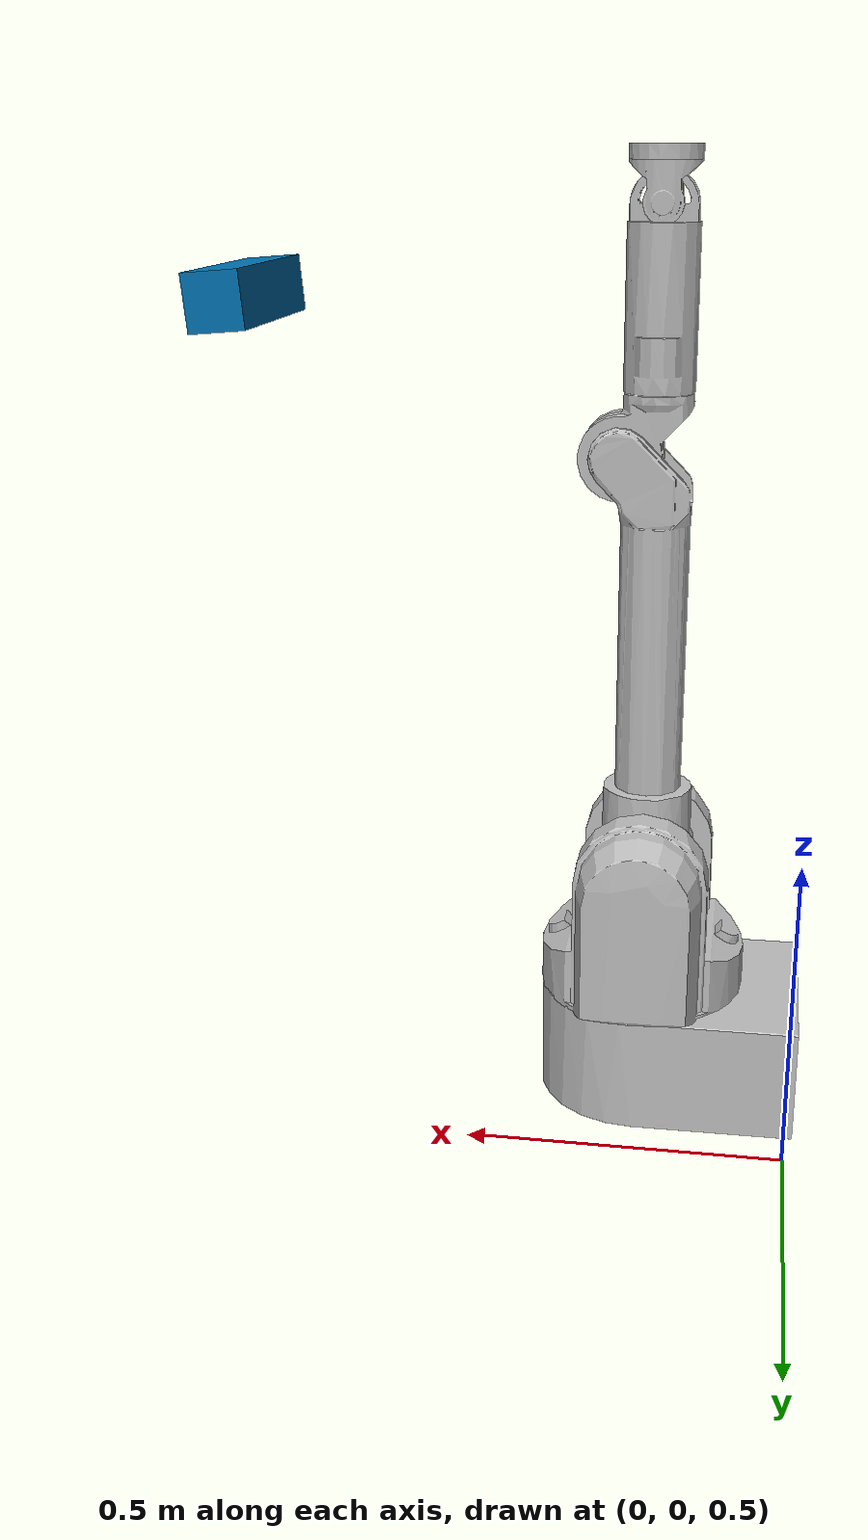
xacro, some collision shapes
<?xml version="1.0"?>
<robot name="iri_wam" xmlns:xacro="http://www.ros.org/wiki/xacro" >

  <!-- Set up definitions of parts of the robot body -->
  <xacro:include filename="$(find iri_wam_description)/xacro/iri_wam_base.urdf.xacro" />
  <xacro:include filename="$(find iri_wam_description)/xacro/iri_wam_1.urdf.xacro" />
  <xacro:include filename="$(find iri_wam_description)/xacro/iri_wam_2.urdf.xacro" />
  <xacro:include filename="$(find iri_wam_description)/xacro/iri_wam_3.urdf.xacro" />
  <xacro:include filename="$(find iri_wam_description)/xacro/iri_wam_4.urdf.xacro" />
  <xacro:include filename="$(find iri_wam_description)/xacro/iri_wam_5.urdf.xacro" />
  <xacro:include filename="$(find iri_wam_description)/xacro/iri_wam_6.urdf.xacro" />
  <xacro:include filename="$(find iri_wam_description)/xacro/iri_wam_7.urdf.xacro" />
  <xacro:include filename="$(find iri_wam_description)/xacro/iri_wam_tcp.urdf.xacro" />
  <xacro:include filename="$(find cirp_wam_description)/xacro/kinect.urdf.xacro" />
  <xacro:include filename="$(find cirp_wam_description)/xacro/gripper.urdf.xacro" />

  <xacro:property name="robot_name" value="iri_wam"/>
  <xacro:property name="JointInterface" value="hardware_interface/EffortJointInterface"/>

  <!-- This will attach the robot to the world link -->
  <link name="world"/>
  <joint name="fixed" type="fixed">
    <parent link="world"/>
    <child  link="${robot_name}_link_footprint"/>
    <origin xyz="0 0 0.72" rpy="0 0 0" />
  </joint>

  <xacro:wambase prefix="${robot_name}"/>
  <xacro:wam1    prefix="${robot_name}" parent="${robot_name}_link_base" controller="${JointInterface}"/>
  <xacro:wam2    prefix="${robot_name}" parent="${robot_name}_link_1" controller="${JointInterface}"/>
  <xacro:wam3    prefix="${robot_name}" parent="${robot_name}_link_2" controller="${JointInterface}"/>
  <xacro:wam4    prefix="${robot_name}" parent="${robot_name}_link_3" controller="${JointInterface}"/>
  <xacro:wam5    prefix="${robot_name}" parent="${robot_name}_link_4" controller="${JointInterface}"/>
  <xacro:wam6    prefix="${robot_name}" parent="${robot_name}_link_5" controller="${JointInterface}"/>
  <xacro:wam7    prefix="${robot_name}" parent="${robot_name}_link_6" controller="${JointInterface}"/>
  <xacro:wamtcp  prefix="${robot_name}" parent="${robot_name}_link_7"/>
  <xacro:gripper prefix="${robot_name}" parent="${robot_name}_link_tcp"/>
  <xacro:kinect                         parent="${robot_name}_link_base" />

  <!-- Not used but exposed here for educational purposes -->

  <!-- ros_control plugin -->
  <gazebo>
    <plugin name="gazebo_ros_control" filename="libgazebo_ros_control.so">
      <robotNamespace>/${robot_name}</robotNamespace>
      <eStopTopic>e_stop</eStopTopic>
    </plugin>
  </gazebo>

</robot>

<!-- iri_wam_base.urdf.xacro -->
<robot xmlns:xacro="http://www.ros.org/wiki/xacro">

  <xacro:property name="M_PI" value="3.1415926535897931" />

  <xacro:property name="base_mass" value="20"/>
  <xacro:property name="base_cg_x" value="0.0"/>
  <xacro:property name="base_cg_y" value="0.0"/>
  <xacro:property name="base_cg_z" value="0.0"/>

  <xacro:macro name="wambase" params="prefix">
    <link name="${prefix}_link_base">
        <inertial>
            <mass value="${base_mass}" />
            <origin xyz="${base_cg_x} ${base_cg_y} ${base_cg_z}" />
            <inertia ixx="0.5" ixy="0.0" ixz="0.0"
                     iyy="0.5" iyz="0.0"
                     izz="0.5" />
        </inertial>

        <visual>
            <origin xyz="0 0 0" rpy="0 0 0" />
            <geometry>
                <mesh filename="package://iri_wam_description/mesh/wambase.stl" scale="1.0 1.0 1.0" />
            </geometry>
            <material name="Grey" >
                <color rgba="0.75 0.75 0.75 1.0"/>
            </material>
        </visual>

        <collision>
            <origin xyz="0.0 0.0 0.0" rpy="0 0 0"/>
            <geometry>
                <mesh filename="package://iri_wam_description/mesh/wambase_collision.stl" scale="1.0 1.0 1.0" />
            </geometry>
            <contact_coefficients kd="1.0" kp="1000.0" mu="0"/>
        </collision>
    </link>

    <link name="${prefix}_link_footprint"/>

    <joint name="${prefix}_joint_footprint" type="fixed">
        <origin xyz="0.22 0.14 0.346" rpy="0 0 0" />
        <child link="${prefix}_link_base"/>
        <parent link="${prefix}_link_footprint"/>
    </joint>

    <gazebo reference="${prefix}_link_base">
        <selfCollide>true</selfCollide>
        <material>Gazebo/Grey</material>
    </gazebo>

  </xacro:macro>

</robot>

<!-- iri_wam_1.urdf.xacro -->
<robot xmlns:xacro="http://www.ros.org/wiki/xacro">

  <xacro:property name="M_PI" value="3.1415926535897931" />

  <xacro:macro name="wam1" params="prefix parent">

    <link name="${prefix}_link_1">
        <inertial>
            <mass value="8.3936" />
            <origin xyz="0.0 0.0 0.0" rpy="0 0 0" />
            <inertia ixx="0.5" ixy="0.0" ixz="0.0"
                     iyy="0.5" iyz="0.0"
                     izz="0.5" />
        </inertial>
        <visual>
            <origin xyz="0.0 0.0 0.0" rpy="0 0 0" />
            <geometry name="${prefix}_link_1_visual">
                <mesh filename="package://iri_wam_description/mesh/wam1.stl" scale="1.0 1.0 1.0" />
            </geometry>
            <material name="Grey" >
                <color rgba="0.75 0.75 0.75 1.0"/>
            </material>
        </visual>
        <collision>
            <origin xyz="0.0 0.0 0.0" rpy="0 0 0"/>
            <geometry name="${prefix}_link_1_collision">
                <mesh filename="package://iri_wam_description/mesh/wam1_collision.stl" scale="1.0 1.0 1.0" />
            </geometry>
            <contact_coefficients kd="1.0" kp="1000.0" mu="0"/>
        </collision>
    </link>

    <gazebo reference="${prefix}_link_1">
        <material>Gazebo/Grey</material>
        <selfCollide>true</selfCollide>
    </gazebo>

    <joint name="${prefix}_joint_1" type="revolute">
        <parent link="${parent}"/>
        <child link="${prefix}_link_1"/>
        <origin xyz="0.0 0.0 0.0" rpy="0 0 0" />
        <axis xyz="0 0 1" />
        <limit lower="-2.6" upper="2.6" effort="75" velocity="2.0"/>
        <dynamics damping="100"/>
    </joint>

    <transmission name="tran_1">
      <type>transmission_interface/SimpleTransmission</type>
      <joint name="${prefix}_joint_1">
       <hardwareInterface>EffortJointInterface</hardwareInterface>
      </joint>
      <actuator name="motor_1">
        <hardwareInterface>EffortJointInterface</hardwareInterface>
      	<mechanicalReduction>50</mechanicalReduction>
        <motorTorqueConstant>1</motorTorqueConstant>
      </actuator>
    </transmission>

  </xacro:macro>

</robot>

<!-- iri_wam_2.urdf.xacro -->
<robot xmlns:xacro="http://www.ros.org/wiki/xacro">

  <xacro:property name="M_PI" value="3.1415926535897931" />

  <xacro:macro name="wam2" params="prefix parent">

    <link name="${prefix}_link_2">
        <inertial>
            <mass value="4.8487" />
            <origin xyz="0 0 0" rpy="0 0 0" />
            <inertia ixx="0.1" ixy="0.0" ixz="0.0"
                     iyy="0.1" iyz="0.0"
                     izz="0.1" />
        </inertial>
        <visual>
            <origin xyz="0.0 0.0 0.0" rpy="0 0 0" />
            <geometry name="${prefix}_link_2_visual">
                <mesh filename="package://iri_wam_description/mesh/wam2.stl" scale="1.0 1.0 1.0" />
            </geometry>
            <material name="Grey" >
                <color rgba="0.75 0.75 0.75 1.0"/>
            </material>
        </visual>
        <collision>
            <origin xyz="0.0 0.0 0.0" rpy="0 0 0"/>
            <geometry name="${prefix}_link_2_collision">
                <mesh filename="package://iri_wam_description/mesh/wam2_collision.stl" scale="1.0 1.0 1.0" />
            </geometry>
            <contact_coefficients kd="1.0" kp="1000.0" mu="0"/>
        </collision>
    </link>

    <gazebo reference="${prefix}_link_2">
        <material>Gazebo/Grey</material>
        <selfCollide>true</selfCollide>
    </gazebo>

    <joint name="${prefix}_joint_2" type="revolute">
        <parent link="${parent}"/>
        <child link="${prefix}_link_2"/>
        <origin xyz="0.0 0.0 0.0" rpy="0 0 0" />
        <axis xyz="0 1 0" />
        <limit lower="-2.0" upper="2.0" effort="75" velocity="2.0"/>
        <dynamics damping="100"/>
    </joint>

    <transmission name="tran_2">
      <type>transmission_interface/SimpleTransmission</type>
      <joint name="${prefix}_joint_2">
      <hardwareInterface>EffortJointInterface</hardwareInterface>
      </joint>
      <actuator name="motor_2">
        <hardwareInterface>EffortJointInterface</hardwareInterface>
      	<mechanicalReduction>50</mechanicalReduction>
        <motorTorqueConstant>1</motorTorqueConstant>
      </actuator>
    </transmission>

  </xacro:macro>

</robot>

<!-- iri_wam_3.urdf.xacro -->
<robot xmlns:xacro="http://www.ros.org/wiki/xacro">

  <xacro:property name="M_PI" value="3.1415926535897931" />

  <xacro:macro name="wam3" params="prefix parent">

    <link name="${prefix}_link_3">
        <inertial>
            <mass value="1.7251" />
            <origin xyz="0 0 0.225" rpy="0 0 0" />
            <inertia ixx="0.1" ixy="0.0" ixz="0.0"
                     iyy="0.1" iyz="0.0"
                     izz="0.1" />
        </inertial>
        <visual>
            <origin xyz="0.0 0.0 0.0" rpy="0 0 0" />
            <geometry name="${prefix}_link_3_visual">
                <mesh filename="package://iri_wam_description/mesh/wam3.stl" scale="1.0 1.0 1.0" />
            </geometry>
            <material name="Grey" >
                <color rgba="0.75 0.75 0.75 1.0"/>
            </material>
        </visual>
        <collision>
            <origin xyz="0.0 0.0 0.0" rpy="0 0 0"/>
            <geometry name="${prefix}_link_3_collision">
                <mesh filename="package://iri_wam_description/mesh/wam3_collision.stl" scale="1.0 1.0 1.0" />
            </geometry>
            <contact_coefficients kd="1.0" kp="1000.0" mu="0"/>
        </collision>
    </link>

    <gazebo reference="${prefix}_link_3">
        <material>Gazebo/Grey</material>
        <selfCollide>true</selfCollide>
    </gazebo>

    <joint name="${prefix}_joint_3" type="revolute">
        <parent link="${parent}"/>
        <child link="${prefix}_link_3"/>
        <origin xyz="0.0 0.0 0.0" rpy="0 0 0" />
        <axis xyz="0 0 1" />
        <limit lower="-2.8" upper="2.8" effort="75" velocity="2.0"/>
        <dynamics damping="100"/>
    </joint>

    <transmission name="tran_3">
      <type>transmission_interface/SimpleTransmission</type>
      <joint name="${prefix}_joint_3">
        <hardwareInterface>EffortJointInterface</hardwareInterface>
      </joint>
      <actuator name="motor_3">
        <hardwareInterface>EffortJointInterface</hardwareInterface>
      	<mechanicalReduction>50</mechanicalReduction>
        <motorTorqueConstant>1</motorTorqueConstant>
      </actuator>
    </transmission>

  </xacro:macro>

</robot>

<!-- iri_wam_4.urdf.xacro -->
<robot xmlns:xacro="http://www.ros.org/wiki/xacro">

  <xacro:property name="M_PI" value="3.1415926535897931" />

  <xacro:macro name="wam4" params="prefix parent">

    <link name="${prefix}_link_4">
        <inertial>
            <mass value="2.0824" />
            <origin xyz="-0.045 -0.15 0" rpy="0 0 0" />
            <inertia ixx="0.2" ixy="0.0" ixz="0.0"
                     iyy="0.2" iyz="0.0"
                     izz="0.2" />
        </inertial>
        <visual>
            <origin xyz="0.0 0.0 0.0" rpy="0 0 0" />
            <geometry name="${prefix}_link_4_visual">
                <mesh filename="package://iri_wam_description/mesh/wam4.stl" scale="1.0 1.0 1.0" />
            </geometry>
            <material name="Grey" >
                <color rgba="0.75 0.75 0.75 1.0"/>
            </material>
        </visual>
        <collision>
            <origin xyz="0.0 0.0 0.0" rpy="0 0 0"/>
            <geometry name="${prefix}_link_4_collision">
                <mesh filename="package://iri_wam_description/mesh/wam4_collision.stl" scale="1.0 1.0 1.0" />
            </geometry>
            <contact_coefficients kd="1.0" kp="1000.0" mu="0"/>
        </collision>
    </link>

    <gazebo reference="${prefix}_link_4">
        <material>Gazebo/Grey</material>
        <selfCollide>true</selfCollide>
    </gazebo>

    <joint name="${prefix}_joint_4" type="revolute">
        <parent link="${parent}"/>
        <child link="${prefix}_link_4"/>
        <origin xyz="0.045 0.0 0.55" rpy="-${M_PI/2} 0 0" />
        <axis xyz="0 0 1" />
        <limit lower="-0.9" upper="3.1" effort="75" velocity="2.0"/>
        <dynamics damping="100"/>
    </joint>

    <transmission name="tran_4">
      <type>transmission_interface/SimpleTransmission</type>
      <joint name="${prefix}_joint_4">
        <hardwareInterface>EffortJointInterface</hardwareInterface>

      </joint>
      <actuator name="motor_4">
        <hardwareInterface>EffortJointInterface</hardwareInterface>
      	<mechanicalReduction>50</mechanicalReduction>
        <motorTorqueConstant>1</motorTorqueConstant>
      </actuator>
    </transmission>

  </xacro:macro>

</robot>

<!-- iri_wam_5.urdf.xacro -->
<robot xmlns:xacro="http://www.ros.org/wiki/xacro">

  <xacro:property name="M_PI" value="3.1415926535897931" />

  <xacro:macro name="wam5" params="prefix parent">

    <link name="${prefix}_link_5">
        <inertial>
            <mass value="0.3067" />
            <origin xyz="0 0 0" rpy="0 0 0" />
            <inertia ixx="0.1" ixy="0.0" ixz="0.0"
                     iyy="0.1" iyz="0.0"
                     izz="0.1" />
        </inertial>
        <visual>
            <origin xyz="0.0 0.0 0.0" rpy="0 0 0" />
            <geometry name="${prefix}_link_5_visual">
                <mesh filename="package://iri_wam_description/mesh/wam5.stl" scale="1.0 1.0 1.0" />
            </geometry>
            <material name="Grey" >
                <color rgba="0.75 0.75 0.75 1.0"/>
            </material>
        </visual>
        <collision>
            <origin xyz="0.0 0.0 0.0" rpy="0 0 0"/>
            <geometry name="${prefix}_link_5_collision">
                <mesh filename="package://iri_wam_description/mesh/wam5_collision.stl" scale="1.0 1.0 1.0" />
            </geometry>
            <contact_coefficients kd="1.0" kp="1000.0" mu="0"/>
        </collision>
    </link>

    <gazebo reference="${prefix}_link_5">
        <material>Gazebo/Grey</material>
        <selfCollide>true</selfCollide>
    </gazebo>

    <joint name="${prefix}_joint_5" type="revolute">
        <parent link="${parent}"/>
        <child link="${prefix}_link_5"/>
        <origin xyz="-0.045 -0.3 0.0" rpy="${M_PI/2} 0 0" />
        <axis xyz="0 0 1" />
        <limit lower="-4.76" upper="1.24" effort="75" velocity="2.0"/>
        <dynamics damping="100"/>
    </joint>

    <transmission name="tran_5">
      <type>transmission_interface/SimpleTransmission</type>
      <joint name="${prefix}_joint_5">
        <hardwareInterface>EffortJointInterface</hardwareInterface>
</joint>
      <actuator name="motor_5">
        <hardwareInterface>EffortJointInterface</hardwareInterface>
      	<mechanicalReduction>50</mechanicalReduction>
        <motorTorqueConstant>1</motorTorqueConstant>
      </actuator>
    </transmission>

  </xacro:macro>

</robot>

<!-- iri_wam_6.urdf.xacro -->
<robot xmlns:xacro="http://www.ros.org/wiki/xacro">

  <xacro:property name="M_PI" value="3.1415926535897931" />

  <xacro:macro name="wam6" params="prefix parent">

    <link name="${prefix}_link_6">
        <inertial>
            <mass value="0.4278" />
            <origin xyz="0 0 0" rpy="0 0 0" />
            <inertia ixx="0.1" ixy="0.0" ixz="0.0"
                     iyy="0.1" iyz="0.0"
                     izz="0.1" />
        </inertial>
        <visual>
            <origin xyz="0.0 0.0 0.0" rpy="0 0 0" />
            <geometry name="${prefix}_link_6_visual">
                <mesh filename="package://iri_wam_description/mesh/wam6.stl" scale="1.0 1.0 1.0" />
            </geometry>
            <material name="Grey" >
                <color rgba="0.75 0.75 0.75 1.0"/>
            </material>
        </visual>
        <collision>
            <origin xyz="0.0 0.0 0.0" rpy="0 0 0"/>
            <geometry name="${prefix}_link_6_collision">
                <mesh filename="package://iri_wam_description/mesh/wam6_collision.stl" scale="1.0 1.0 1.0" />
            </geometry>
            <contact_coefficients kd="1.0" kp="1000.0" mu="0"/>
        </collision>
    </link>

    <gazebo reference="${prefix}_link_6">
        <material>Gazebo/Grey</material>
        <selfCollide>true</selfCollide>
    </gazebo>

    <joint name="${prefix}_joint_6" type="revolute">
        <parent link="${parent}"/>
        <child link="${prefix}_link_6"/>
        <origin xyz="0.0 0.0 0.0" rpy="-${M_PI/2} 0 0" />
        <axis xyz="0 0 1" />
        <limit lower="-1.6" upper="1.6" effort="75" velocity="2.0"/>
        <dynamics damping="100"/>
    </joint>

    <transmission name="tran_6">
      <type>transmission_interface/SimpleTransmission</type>
      <joint name="${prefix}_joint_6">
        <hardwareInterface>EffortJointInterface</hardwareInterface>

</joint>
      <actuator name="motor_6">
        <hardwareInterface>EffortJointInterface</hardwareInterface>
      	<mechanicalReduction>50</mechanicalReduction>
        <motorTorqueConstant>1</motorTorqueConstant>
      </actuator>
    </transmission>

  </xacro:macro>

</robot>

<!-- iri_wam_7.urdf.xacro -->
<robot xmlns:xacro="http://www.ros.org/wiki/xacro">

  <xacro:property name="M_PI" value="3.1415926535897931" />

  <xacro:macro name="wam7" params="prefix parent">

    <link name="${prefix}_link_7">
        <inertial>
            <mass value="0.0557" />
            <origin xyz="0 0 0" rpy="0 0 0" />
            <inertia ixx="0.1" ixy="0.0" ixz="0.0"
                     iyy="0.1" iyz="0.0"
                     izz="0.1" />
        </inertial>
        <visual>
            <origin xyz="0.0 0.0 0.0" rpy="0 0 0" />
            <geometry name="${prefix}_link_7_visual">
                <mesh filename="package://iri_wam_description/mesh/wam7.stl" scale="1.0 1.0 1.0" />
            </geometry>
            <material name="Grey" >
                <color rgba="0.75 0.75 0.75 1.0"/>
            </material>
        </visual>
        <collision>
            <origin xyz="0.0 0.0 0.0" rpy="0 0 0"/>
            <geometry name="${prefix}_link_7_collision">
                <mesh filename="package://iri_wam_description/mesh/wam7_collision.stl" scale="1.0 1.0 1.0" />
            </geometry>
            <contact_coefficients kd="1.0" kp="1000.0" mu="0"/>
        </collision>
    </link>

    <gazebo reference="${prefix}_link_7">
        <material>Gazebo/Grey</material>
        <selfCollide>true</selfCollide>
    </gazebo>

    <joint name="${prefix}_joint_7" type="revolute">
        <parent link="${parent}"/>
        <child link="${prefix}_link_7"/>
        <origin xyz="0.0 0.0 0.0" rpy="${M_PI/2} 0 0" />
        <axis xyz="0 0 1" />
        <limit lower="-3.0" upper="3.0" effort="75" velocity="2.0"/>
        <dynamics damping="100"/>
    </joint>

    <transmission name="tran_7">
      <type>transmission_interface/SimpleTransmission</type>
      <joint name="${prefix}_joint_7">
        <hardwareInterface>EffortJointInterface</hardwareInterface>

</joint>
      <actuator name="motor_7">
        <hardwareInterface>EffortJointInterface</hardwareInterface>
      	<mechanicalReduction>50</mechanicalReduction>
        <motorTorqueConstant>1</motorTorqueConstant>
      </actuator>
    </transmission>

  </xacro:macro>

</robot>

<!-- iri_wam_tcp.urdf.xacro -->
<robot xmlns:xacro="http://www.ros.org/wiki/xacro">

  <xacro:property name="M_PI" value="3.1415926535897931" />

  <xacro:macro name="wamtcp" params="prefix parent">

    <link name="${prefix}_link_tcp" />

    <joint name="${prefix}_joint_tcp" type="fixed" >
      <parent link="${parent}" />
      <child link="${prefix}_link_tcp" />
      <origin xyz="0.0 0.0 0.06" rpy="0 0 0" />
    </joint>

  </xacro:macro>

</robot>

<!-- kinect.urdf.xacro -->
<robot xmlns:xacro="http://www.ros.org/wiki/xacro" >

  <xacro:property name="M_PI" value="3.1415926535897931" />
  <xacro:property name="cam_px" value="-0.1" />
  <xacro:property name="cam_py" value="-0.0125" />
  <xacro:property name="cam_pz" value=" 0.08" />
  <xacro:property name="cam_or" value="0" />
  <xacro:property name="cam_op" value="-${M_PI/2}" />
  <xacro:property name="cam_oy" value="0" />

  <xacro:macro name="kinect" params="parent cam_ns:=camera prefix:=camera">

    <!-- In gazebo the camera looks along the X axis!!-->
    <gazebo reference="${prefix}_rgb_frame">
      <sensor name='camera' type='depth'>
        <update_rate>40</update_rate>
        <camera name='__default__'>
          <horizontal_fov>1.0472</horizontal_fov>
          <image>
            <width>640</width>
            <height>480</height>
            <format>R8G8B8</format>
          </image>
          <clip>
            <near>0.05</near>
            <far>3</far>
          </clip>
        </camera>

        <plugin name="kinect_controller" filename="libgazebo_ros_openni_kinect.so">
          <baseline>0.2</baseline>
          <alwaysOn>true</alwaysOn>
          <updateRate>1.0</updateRate>
          <cameraName>kinect_ir</cameraName>
          <imageTopicName>/${cam_ns}/rgb/image_color</imageTopicName>
          <cameraInfoTopicName>/${cam_ns}/rgb/camera_info</cameraInfoTopicName>
          <depthImageTopicName>/${cam_ns}/depth_registered/image_raw</depthImageTopicName>
          <depthImageCameraInfoTopicName>/${cam_ns}/depth/camera_info</depthImageCameraInfoTopicName>
          <pointCloudTopicName>/${cam_ns}/depth_registered/points</pointCloudTopicName>
          <frameName>/${prefix}_rgb_optical_frame</frameName>
          <pointCloudCutoff>0.5</pointCloudCutoff>
          <distortionK1>0.00000001</distortionK1>
          <distortionK2>0.00000001</distortionK2>
          <distortionK3>0.00000001</distortionK3>
          <distortionT1>0.00000001</distortionT1>
          <distortionT2>0.00000001</distortionT2>
          <CxPrime>0</CxPrime>
          <Cx>0</Cx>
          <Cy>0</Cy>
          <focalLength>0</focalLength>
          <hackBaseline>0</hackBaseline>
        </plugin>
      </sensor>
      <turnGravityOff>false</turnGravityOff>
    </gazebo>

    <link name="${prefix}_link">
      <visual>
        <origin xyz="0 0 0" rpy="0 0 ${M_PI/2}"/>
        <geometry>
          <mesh filename="package://robots_description/meshes/kinect.dae"/>
        </geometry>
      </visual>
      <collision>
        <origin xyz="0.0 0.0 0.0" rpy="0 0 0"/>
        <geometry>
          <box size="0.07271 0.27794 0.073"/>
        </geometry>
      </collision>
      <inertial>
        <mass value="0.001" />
        <origin xyz="0 0 0" />
        <inertia ixx="0.0001" ixy="0.0" ixz="0.0"
          iyy="0.0001" iyz="0.0"
          izz="0.0001" />
      </inertial>
    </link>

    <!-- Fix camera link to parent according to calibration transform.
         Alternatively, we could remove this joint from here and put it at
         the main .urdf.xacro file. -->
    <joint name="${prefix}_joint" type="fixed">
      <origin xyz="0.540 -0.060 0.736" rpy="0 1.490 3.142" />
      <parent link="${parent}"/>
      <child link="${prefix}_link"/>
    </joint>

    <link name="${prefix}_rgb_frame" />

    <joint name="${prefix}_rgb_joint" type="fixed">
      <origin xyz="0.031 ${cam_py} 0.016" rpy="0 0 0" />
      <parent link="${prefix}_link" />
      <child link="${prefix}_rgb_frame" />
    </joint>

    <link name="${prefix}_rgb_optical_frame" />

    <joint name="${prefix}_rgb_optical_joint" type="fixed">
      <origin xyz="0 0 0" rpy="${-M_PI/2} 0 ${-M_PI/2}" />
      <parent link="${prefix}_rgb_frame" />
      <child link="${prefix}_rgb_optical_frame" />
    </joint>

    <link name="${prefix}_depth_frame"/>

    <joint name="${prefix}_depth_joint" type="fixed">
      <origin xyz="0 ${2 * -cam_py} 0" rpy="0 0 0" />
      <parent link="${prefix}_rgb_frame" />
      <child link="${prefix}_depth_frame" />
    </joint>

    <link name="${prefix}_depth_optical_frame" />

    <joint name="${prefix}_depth_optical_joint" type="fixed">
      <origin xyz="0 0 0" rpy="${-M_PI/2} 0 ${-M_PI/2}" />
      <parent link="${prefix}_depth_frame" />
      <child link="${prefix}_depth_optical_frame" />
    </joint>

  </xacro:macro>

</robot>

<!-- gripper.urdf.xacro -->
<robot xmlns:xacro="http://www.ros.org/wiki/xacro">

  <xacro:property name="M_PI" value="3.1415926535897931" />

  <xacro:macro name="gripper" params="prefix parent">

    <link name="${prefix}_gripper_tcp" />

    <joint name="${prefix}_gripper_tcp_j" type="fixed" >
      <parent link="${parent}" />
      <child link="${prefix}_gripper_tcp" />
      <origin xyz="0.0 0.0 0.115" rpy="0 0 0" />
    </joint>

    <gazebo>
      <plugin filename="libgz_gripper_plugin.so" name="gripper_plugin">
        <gripper_link>${prefix}_link_7</gripper_link>
        <gripper_tf>${prefix}_gripper_tcp</gripper_tf>
      </plugin>
    </gazebo>

    <gazebo reference="${prefix}_gripper">
      <material>Gazebo/Grey</material>
    </gazebo>

  </xacro:macro>

</robot>
